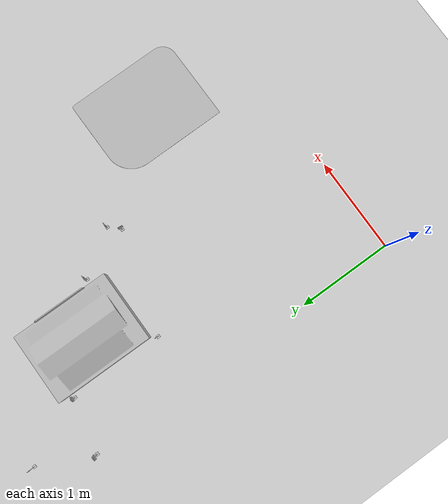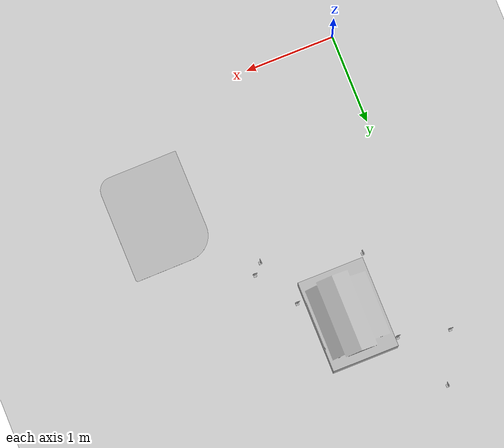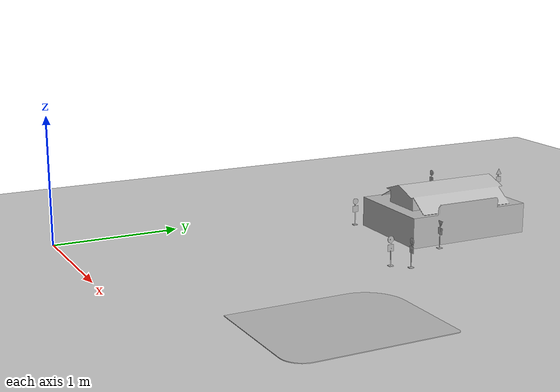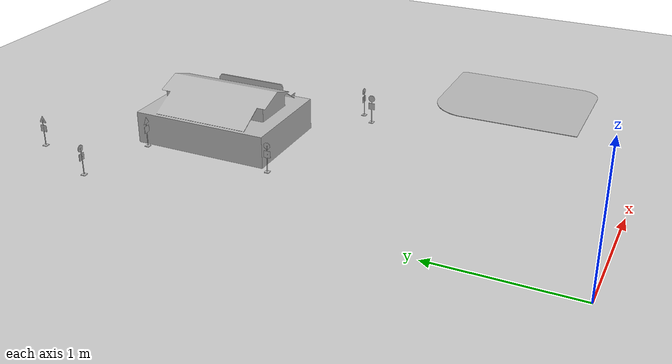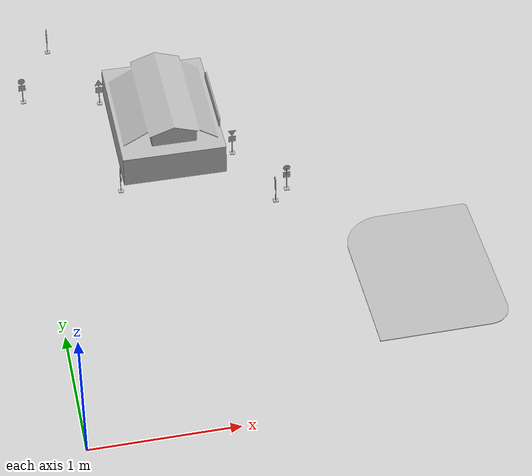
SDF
<sdf version="1.6">
 <world name="default">
  <model name="ground_plane">
   <static>1</static>
   <link name="link">
    <collision name="collision">
     <geometry><plane><normal>0 0 1</normal><size>100 100</size></plane></geometry>
     <surface><friction><ode><mu>100</mu><mu2>50</mu2></ode></friction></surface>
    </collision>
    <visual name="visual">
     <cast_shadows>0</cast_shadows>
     <geometry><plane><normal>0 0 1</normal><size>100 100</size></plane></geometry>
     <material>
      <script><uri>file://media/materials/scripts/gazebo.material</uri><name>Gazebo/Grey</name></script>
     </material>
    </visual>
   </link>
  </model>
  <model name="rotonda_aruco_0">
   <link name="link_18">
    <inertial>
     <mass>0.02</mass>
     <inertia>
      <ixx>0.166667</ixx>
      <ixy>0</ixy>
      <ixz>0</ixz>
      <iyy>0.166667</iyy>
      <iyz>0</iyz>
      <izz>0.166667</izz>
     </inertia>
    </inertial>
    <visual name="visual">
     <geometry>
      <mesh><uri>file://models/stl/SENALES_ARUCOS/ROTONDA/rotonda_aruco.dae</uri><scale>1 1 1</scale></mesh>
     </geometry>
    </visual>
    <collision name="collision">
     <geometry>
      <mesh><uri>file://models/stl/SENALES_ARUCOS/ROTONDA/rotonda_aruco.dae</uri><scale>1 1 1</scale></mesh>
     </geometry>
     <surface>
      <friction>
       <ode><mu>1</mu><mu2>1</mu2><fdir1>0 0 0</fdir1><slip1>0</slip1><slip2>0</slip2></ode>
       <torsional>
        <coefficient>1</coefficient>
        <patch_radius>0</patch_radius>
        <surface_radius>0</surface_radius>
        <use_patch_radius>1</use_patch_radius>
        <ode><slip>0</slip></ode>
       </torsional>
      </friction>
      <bounce><restitution_coefficient>0</restitution_coefficient><threshold>1e+06</threshold></bounce>
      <contact>
       <collide_without_contact>0</collide_without_contact>
       <collide_without_contact_bitmask>1</collide_without_contact_bitmask>
       <collide_bitmask>1</collide_bitmask>
       <ode>
        <soft_cfm>0</soft_cfm>
        <soft_erp>0.2</soft_erp>
        <kp>1e+13</kp>
        <kd>1</kd>
        <max_vel>0.01</max_vel>
        <min_depth>0</min_depth>
       </ode>
       <bullet>
        <split_impulse>1</split_impulse>
        <split_impulse_penetration_threshold>-0.01</split_impulse_penetration_threshold>
        <soft_cfm>0</soft_cfm>
        <soft_erp>0.2</soft_erp>
        <kp>1e+13</kp>
        <kd>1</kd>
       </bullet>
      </contact>
     </surface>
    </collision>
   </link>
   <static>0</static>
   <pose>1.64213 2.00565 0.012788 4e-06 2e-06 -1.57655</pose>
  </model>
  <model name="rotonda_aruco_2">
   <link name="link_18">
    <inertial>
     <mass>0.02</mass>
     <inertia>
      <ixx>0.166667</ixx>
      <ixy>0</ixy>
      <ixz>0</ixz>
      <iyy>0.166667</iyy>
      <iyz>0</iyz>
      <izz>0.166667</izz>
     </inertia>
    </inertial>
    <visual name="visual">
     <geometry>
      <mesh><uri>file://models/stl/SENALES_ARUCOS/ROTONDA/rotonda_aruco.dae</uri><scale>1 1 1</scale></mesh>
     </geometry>
    </visual>
    <collision name="collision">
     <geometry>
      <mesh><uri>file://models/stl/SENALES_ARUCOS/ROTONDA/rotonda_aruco.dae</uri><scale>1 1 1</scale></mesh>
     </geometry>
     <surface>
      <friction>
       <ode><mu>1</mu><mu2>1</mu2><fdir1>0 0 0</fdir1><slip1>0</slip1><slip2>0</slip2></ode>
       <torsional>
        <coefficient>1</coefficient>
        <patch_radius>0</patch_radius>
        <surface_radius>0</surface_radius>
        <use_patch_radius>1</use_patch_radius>
        <ode><slip>0</slip></ode>
       </torsional>
      </friction>
      <bounce><restitution_coefficient>0</restitution_coefficient><threshold>1e+06</threshold></bounce>
      <contact>
       <collide_without_contact>0</collide_without_contact>
       <collide_without_contact_bitmask>1</collide_without_contact_bitmask>
       <collide_bitmask>1</collide_bitmask>
       <ode>
        <soft_cfm>0</soft_cfm>
        <soft_erp>0.2</soft_erp>
        <kp>1e+13</kp>
        <kd>1</kd>
        <max_vel>0.01</max_vel>
        <min_depth>0</min_depth>
       </ode>
       <bullet>
        <split_impulse>1</split_impulse>
        <split_impulse_penetration_threshold>-0.01</split_impulse_penetration_threshold>
        <soft_cfm>0</soft_cfm>
        <soft_erp>0.2</soft_erp>
        <kp>1e+13</kp>
        <kd>1</kd>
       </bullet>
      </contact>
     </surface>
    </collision>
   </link>
   <static>0</static>
   <pose>1.74617 2.11368 0.012778 9e-06 -1e-06 3.13013</pose>
  </model>
  <model name="parar_aruco_0">
   <link name="link_13">
    <inertial>
     <mass>0.02</mass>
     <inertia>
      <ixx>0.166667</ixx>
      <ixy>0</ixy>
      <ixz>0</ixz>
      <iyy>0.166667</iyy>
      <iyz>0</iyz>
      <izz>0.166667</izz>
     </inertia>
    </inertial>
    <visual name="visual">
     <geometry>
      <mesh><uri>file://models/stl/SENALES_ARUCOS/PARAR/parar_aruco.dae</uri><scale>1 1 1</scale></mesh>
     </geometry>
    </visual>
    <collision name="collision">
     <geometry>
      <mesh><uri>file://models/stl/SENALES_ARUCOS/PARAR/parar_aruco.dae</uri><scale>1 1 1</scale></mesh>
     </geometry>
     <surface>
      <friction>
       <ode><mu>1</mu><mu2>1</mu2><fdir1>0 0 0</fdir1><slip1>0</slip1><slip2>0</slip2></ode>
       <torsional>
        <coefficient>1</coefficient>
        <patch_radius>0</patch_radius>
        <surface_radius>0</surface_radius>
        <use_patch_radius>1</use_patch_radius>
        <ode><slip>0</slip></ode>
       </torsional>
      </friction>
      <bounce><restitution_coefficient>0</restitution_coefficient><threshold>1e+06</threshold></bounce>
      <contact>
       <collide_without_contact>0</collide_without_contact>
       <collide_without_contact_bitmask>1</collide_without_contact_bitmask>
       <collide_bitmask>1</collide_bitmask>
       <ode>
        <soft_cfm>0</soft_cfm>
        <soft_erp>0.2</soft_erp>
        <kp>1e+13</kp>
        <kd>1</kd>
        <max_vel>0.01</max_vel>
        <min_depth>0</min_depth>
       </ode>
       <bullet>
        <split_impulse>1</split_impulse>
        <split_impulse_penetration_threshold>-0.01</split_impulse_penetration_threshold>
        <soft_cfm>0</soft_cfm>
        <soft_erp>0.2</soft_erp>
        <kp>1e+13</kp>
        <kd>1</kd>
       </bullet>
      </contact>
     </surface>
    </collision>
   </link>
   <static>0</static>
   <pose>0.585047 2.32253 0.012778 7e-06 1e-06 1.597</pose>
  </model>
  <model name="ceda_aruco_0">
   <link name="link_9">
    <inertial>
     <mass>0.02</mass>
     <inertia>
      <ixx>0.166667</ixx>
      <ixy>0</ixy>
      <ixz>0</ixz>
      <iyy>0.166667</iyy>
      <iyz>0</iyz>
      <izz>0.166667</izz>
     </inertia>
    </inertial>
    <visual name="visual">
     <geometry>
      <mesh><uri>file://models/stl/SENALES_ARUCOS/CEDA/ceda_aruco.dae</uri><scale>1 1 1</scale></mesh>
     </geometry>
    </visual>
    <collision name="collision">
     <geometry>
      <mesh><uri>file://models/stl/SENALES_ARUCOS/CEDA/ceda_aruco.dae</uri><scale>1 1 1</scale></mesh>
     </geometry>
     <surface>
      <friction>
       <ode><mu>1</mu><mu2>1</mu2><fdir1>0 0 0</fdir1><slip1>0</slip1><slip2>0</slip2></ode>
       <torsional>
        <coefficient>1</coefficient>
        <patch_radius>0</patch_radius>
        <surface_radius>0</surface_radius>
        <use_patch_radius>1</use_patch_radius>
        <ode><slip>0</slip></ode>
       </torsional>
      </friction>
      <bounce><restitution_coefficient>0</restitution_coefficient><threshold>1e+06</threshold></bounce>
      <contact>
       <collide_without_contact>0</collide_without_contact>
       <collide_without_contact_bitmask>1</collide_without_contact_bitmask>
       <collide_bitmask>1</collide_bitmask>
       <ode>
        <soft_cfm>0</soft_cfm>
        <soft_erp>0.2</soft_erp>
        <kp>1e+13</kp>
        <kd>1</kd>
        <max_vel>0.01</max_vel>
        <min_depth>0</min_depth>
       </ode>
       <bullet>
        <split_impulse>1</split_impulse>
        <split_impulse_penetration_threshold>-0.01</split_impulse_penetration_threshold>
        <soft_cfm>0</soft_cfm>
        <soft_erp>0.2</soft_erp>
        <kp>1e+13</kp>
        <kd>1</kd>
       </bullet>
      </contact>
     </surface>
    </collision>
   </link>
   <static>0</static>
   <pose>1.43993 2.56488 0.012786 2e-06 -1e-06 -3.14137</pose>
  </model>
  <model name="peligro_izqu_aruco_2">
   <link name="link_17">
    <inertial>
     <mass>0.02</mass>
     <inertia>
      <ixx>0.166667</ixx>
      <ixy>0</ixy>
      <ixz>0</ixz>
      <iyy>0.166667</iyy>
      <iyz>0</iyz>
      <izz>0.166667</izz>
     </inertia>
    </inertial>
    <visual name="visual">
     <geometry>
      <mesh>
       <uri>file://models/stl/SENALES_ARUCOS/PELIGRO IZQUIERDA/peligr_izq_aruco.dae</uri>
       <scale>1 1 1</scale>
      </mesh>
     </geometry>
    </visual>
    <collision name="collision">
     <geometry>
      <mesh>
       <uri>file://models/stl/SENALES_ARUCOS/PELIGRO IZQUIERDA/peligr_izq_aruco.dae</uri>
       <scale>1 1 1</scale>
      </mesh>
     </geometry>
     <surface>
      <friction>
       <ode><mu>1</mu><mu2>1</mu2><fdir1>0 0 0</fdir1><slip1>0</slip1><slip2>0</slip2></ode>
       <torsional>
        <coefficient>1</coefficient>
        <patch_radius>0</patch_radius>
        <surface_radius>0</surface_radius>
        <use_patch_radius>1</use_patch_radius>
        <ode><slip>0</slip></ode>
       </torsional>
      </friction>
      <bounce><restitution_coefficient>0</restitution_coefficient><threshold>1e+06</threshold></bounce>
      <contact>
       <collide_without_contact>0</collide_without_contact>
       <collide_without_contact_bitmask>1</collide_without_contact_bitmask>
       <collide_bitmask>1</collide_bitmask>
       <ode>
        <soft_cfm>0</soft_cfm>
        <soft_erp>0.2</soft_erp>
        <kp>1e+13</kp>
        <kd>1</kd>
        <max_vel>0.01</max_vel>
        <min_depth>0</min_depth>
       </ode>
       <bullet>
        <split_impulse>1</split_impulse>
        <split_impulse_penetration_threshold>-0.01</split_impulse_penetration_threshold>
        <soft_cfm>0</soft_cfm>
        <soft_erp>0.2</soft_erp>
        <kp>1e+13</kp>
        <kd>1</kd>
       </bullet>
      </contact>
     </surface>
    </collision>
   </link>
   <static>0</static>
   <pose>0.577549 3.30121 0.012778 5e-06 3e-06 -1e-06</pose>
  </model>
  <model name="velocidad50_aruco">
   <link name="link_23">
    <inertial>
     <mass>0.02</mass>
     <inertia>
      <ixx>0.166667</ixx>
      <ixy>0</ixy>
      <ixz>0</ixz>
      <iyy>0.166667</iyy>
      <iyz>0</iyz>
      <izz>0.166667</izz>
     </inertia>
    </inertial>
    <visual name="visual">
     <geometry>
      <mesh><uri>file://models/stl/SENALES_ARUCOS/VELOCIDAD50/velo50_aruco.dae</uri><scale>1 1 1</scale></mesh>
     </geometry>
    </visual>
    <collision name="collision">
     <geometry>
      <mesh><uri>file://models/stl/SENALES_ARUCOS/VELOCIDAD50/velo50_aruco.dae</uri><scale>1 1 1</scale></mesh>
     </geometry>
     <surface>
      <friction>
       <ode><mu>1</mu><mu2>1</mu2><fdir1>0 0 0</fdir1><slip1>0</slip1><slip2>0</slip2></ode>
       <torsional>
        <coefficient>1</coefficient>
        <patch_radius>0</patch_radius>
        <surface_radius>0</surface_radius>
        <use_patch_radius>1</use_patch_radius>
        <ode><slip>0</slip></ode>
       </torsional>
      </friction>
      <bounce><restitution_coefficient>0</restitution_coefficient><threshold>1e+06</threshold></bounce>
      <contact>
       <collide_without_contact>0</collide_without_contact>
       <collide_without_contact_bitmask>1</collide_without_contact_bitmask>
       <collide_bitmask>1</collide_bitmask>
       <ode>
        <soft_cfm>0</soft_cfm>
        <soft_erp>0.2</soft_erp>
        <kp>1e+13</kp>
        <kd>1</kd>
        <max_vel>0.01</max_vel>
        <min_depth>0</min_depth>
       </ode>
       <bullet>
        <split_impulse>1</split_impulse>
        <split_impulse_penetration_threshold>-0.01</split_impulse_penetration_threshold>
        <soft_cfm>0</soft_cfm>
        <soft_erp>0.2</soft_erp>
        <kp>1e+13</kp>
        <kd>1</kd>
       </bullet>
      </contact>
     </surface>
    </collision>
   </link>
   <static>0</static>
   <pose>0.021042 3.43181 0.012778 7e-06 -6e-06 -3.12205</pose>
  </model>
  <model name="peligro_dcha_aruco">
   <link name="link_16">
    <inertial>
     <mass>0.02</mass>
     <inertia>
      <ixx>0.166667</ixx>
      <ixy>0</ixy>
      <ixz>0</ixz>
      <iyy>0.166667</iyy>
      <iyz>0</iyz>
      <izz>0.166667</izz>
     </inertia>
    </inertial>
    <visual name="visual">
     <geometry>
      <mesh>
       <uri>file://models/stl/SENALES_ARUCOS/PELIGRO DERECHA/peligr_dcha_aruco.dae</uri>
       <scale>1 1 1</scale>
      </mesh>
     </geometry>
    </visual>
    <collision name="collision">
     <geometry>
      <mesh>
       <uri>file://models/stl/SENALES_ARUCOS/PELIGRO DERECHA/peligr_dcha_aruco.dae</uri>
       <scale>1 1 1</scale>
      </mesh>
     </geometry>
     <surface>
      <friction>
       <ode><mu>1</mu><mu2>1</mu2><fdir1>0 0 0</fdir1><slip1>0</slip1><slip2>0</slip2></ode>
       <torsional>
        <coefficient>1</coefficient>
        <patch_radius>0</patch_radius>
        <surface_radius>0</surface_radius>
        <use_patch_radius>1</use_patch_radius>
        <ode><slip>0</slip></ode>
       </torsional>
      </friction>
      <bounce><restitution_coefficient>0</restitution_coefficient><threshold>1e+06</threshold></bounce>
      <contact>
       <collide_without_contact>0</collide_without_contact>
       <collide_without_contact_bitmask>1</collide_without_contact_bitmask>
       <collide_bitmask>1</collide_bitmask>
       <ode>
        <soft_cfm>0</soft_cfm>
        <soft_erp>0.2</soft_erp>
        <kp>1e+13</kp>
        <kd>1</kd>
        <max_vel>0.01</max_vel>
        <min_depth>0</min_depth>
       </ode>
       <bullet>
        <split_impulse>1</split_impulse>
        <split_impulse_penetration_threshold>-0.01</split_impulse_penetration_threshold>
        <soft_cfm>0</soft_cfm>
        <soft_erp>0.2</soft_erp>
        <kp>1e+13</kp>
        <kd>1</kd>
       </bullet>
      </contact>
     </surface>
    </collision>
   </link>
   <static>0</static>
   <pose>0.275306 3.9775 0.012788 2e-06 -4e-06 1.57611</pose>
  </model>
  <model name="super">
   <link name="link_0">
    <inertial>
     <mass>1</mass>
     <inertia>
      <ixx>0.166667</ixx>
      <ixy>0</ixy>
      <ixz>0</ixz>
      <iyy>0.166667</iyy>
      <iyz>0</iyz>
      <izz>0.166667</izz>
     </inertia>
    </inertial>
    <visual name="visual">
     <geometry>
      <mesh><uri>file://models/stl/SUPERMARKET_DAE/supermarket.dae</uri><scale>1 1 1</scale></mesh>
     </geometry>
     <material><shader type="pixel"><normal_map>__default__</normal_map></shader></material>
    </visual>
    <collision name="collision">
     <pose>0.51 -0.365 0 0 -0 0</pose>
     <geometry><box><size>1.03 0.75 0.89</size></box></geometry>
     <surface>
      <friction>
       <ode><mu>1</mu><mu2>1</mu2><fdir1>0 0 0</fdir1><slip1>0</slip1><slip2>0</slip2></ode>
       <torsional>
        <coefficient>1</coefficient>
        <patch_radius>0</patch_radius>
        <surface_radius>0</surface_radius>
        <use_patch_radius>1</use_patch_radius>
        <ode><slip>0</slip></ode>
       </torsional>
      </friction>
      <bounce><restitution_coefficient>0</restitution_coefficient><threshold>1e+06</threshold></bounce>
      <contact>
       <collide_without_contact>0</collide_without_contact>
       <collide_without_contact_bitmask>1</collide_without_contact_bitmask>
       <collide_bitmask>1</collide_bitmask>
       <ode>
        <soft_cfm>0</soft_cfm>
        <soft_erp>0.2</soft_erp>
        <kp>1e+13</kp>
        <kd>1</kd>
        <max_vel>0.01</max_vel>
        <min_depth>0</min_depth>
       </ode>
       <bullet>
        <split_impulse>1</split_impulse>
        <split_impulse_penetration_threshold>-0.01</split_impulse_penetration_threshold>
        <soft_cfm>0</soft_cfm>
        <soft_erp>0.2</soft_erp>
        <kp>1e+13</kp>
        <kd>1</kd>
       </bullet>
      </contact>
     </surface>
    </collision>
   </link>
   <static>1</static>
   <pose>0.624603 2.38082 0 0 -0 1.5708</pose>
  </model>
  <model name="big_cesped_0">
   <link name="link_0">
    <inertial>
     <mass>50</mass>
     <inertia>
      <ixx>0.166667</ixx>
      <ixy>0</ixy>
      <ixz>0</ixz>
      <iyy>0.166667</iyy>
      <iyz>0</iyz>
      <izz>0.166667</izz>
     </inertia>
    </inertial>
    <visual name="visual">
     <geometry><mesh><uri>file://models/stl/Big_cesped/cesped_big.dae</uri><scale>1 1 1</scale></mesh></geometry>
     <material><shader type="vertex"><normal_map>__default__</normal_map></shader></material>
    </visual>
    <collision name="collision">
     <pose>-2.47 0.55 0.23 1.57 -0 0</pose>
     <geometry><box><size>0.72 0.02 1.01</size></box></geometry>
     <surface>
      <friction>
       <ode><mu>1</mu><mu2>1</mu2><fdir1>0 0 0</fdir1><slip1>0</slip1><slip2>0</slip2></ode>
       <torsional>
        <coefficient>1</coefficient>
        <patch_radius>0</patch_radius>
        <surface_radius>0</surface_radius>
        <use_patch_radius>1</use_patch_radius>
        <ode><slip>0</slip></ode>
       </torsional>
      </friction>
      <bounce><restitution_coefficient>0</restitution_coefficient><threshold>1e+06</threshold></bounce>
      <contact>
       <collide_without_contact>0</collide_without_contact>
       <collide_without_contact_bitmask>1</collide_without_contact_bitmask>
       <collide_bitmask>1</collide_bitmask>
       <ode>
        <soft_cfm>0</soft_cfm>
        <soft_erp>0.2</soft_erp>
        <kp>1e+13</kp>
        <kd>1</kd>
        <max_vel>0.01</max_vel>
        <min_depth>0</min_depth>
       </ode>
       <bullet>
        <split_impulse>1</split_impulse>
        <split_impulse_penetration_threshold>-0.01</split_impulse_penetration_threshold>
        <soft_cfm>0</soft_cfm>
        <soft_erp>0.2</soft_erp>
        <kp>1e+13</kp>
        <kd>1</kd>
       </bullet>
      </contact>
     </surface>
    </collision>
   </link>
   <static>1</static>
   <pose>0.767329 2.16245 0.012362 0 0 -3.13334</pose>
  </model>
 </world>
</sdf>
